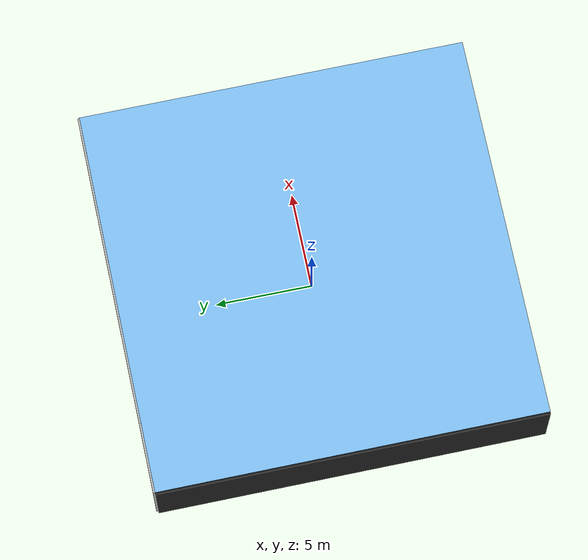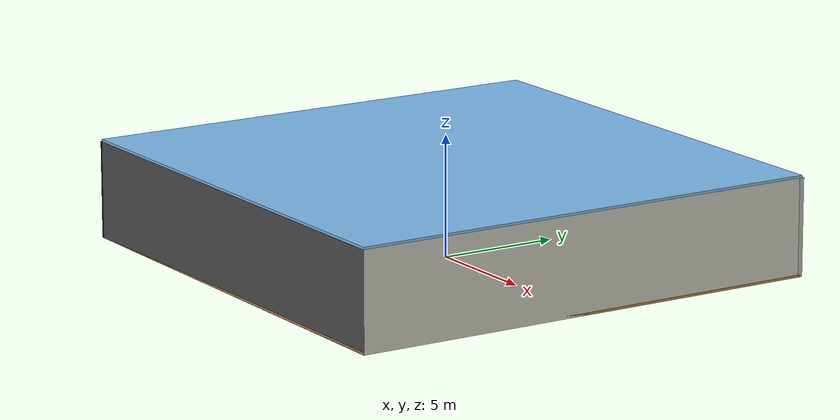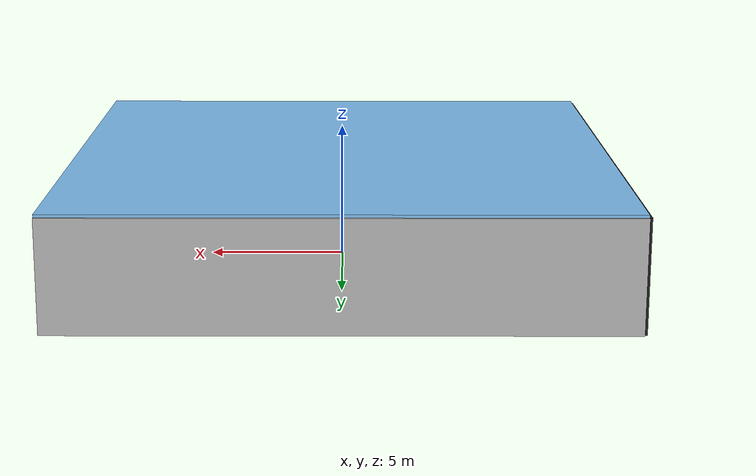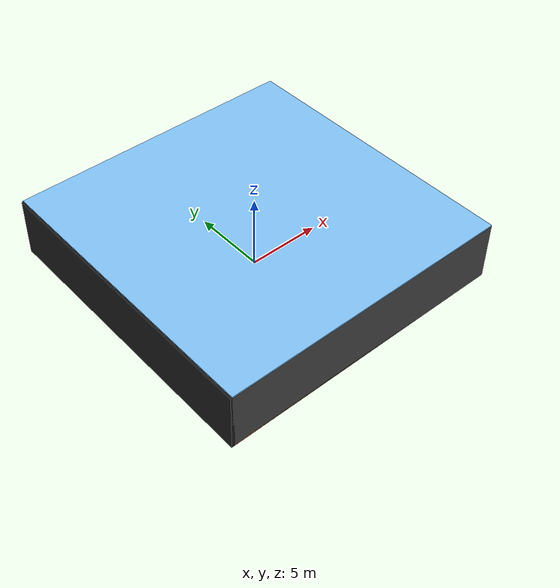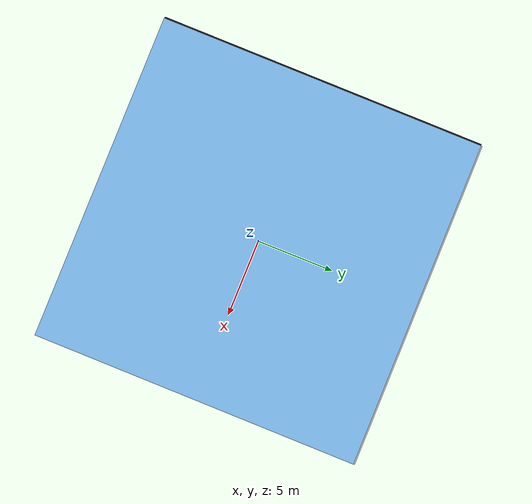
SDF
<sdf version="1.4">
 <world name="default">
  <physics type="ode">
   <max_step_size>0.001</max_step_size>
   <real_time_factor>1</real_time_factor>
   <real_time_update_rate>1000</real_time_update_rate>
   <gravity>0 0 -9.8</gravity>
  </physics>
  <scene><ambient>0.4 0.4 0.4 1</ambient><background>0.7 0.7 0.7 1</background><shadows>1</shadows></scene>
  <model name="Surrounding">
   <static>1</static>
   <link name="Ceiling">
    <collision name="Ceiling_Collision"><geometry><box><size>20 20 0.1</size></box></geometry></collision>
    <visual name="Ceiling_Visual">
     <geometry><box><size>20 20 0.1</size></box></geometry>
     <material>
      <script><uri>file://media/materials/scripts/gazebo.material</uri><name>Gazebo/SkyBlue</name></script>
     </material>
    </visual>
    <pose>0 0 4.05 0 0 0</pose>
   </link>
   <link name="Wall_South">
    <collision name="Wall_South_Collision">
     <geometry><box><size>20 0 4</size></box></geometry>
     <pose>0 0 2 0 -0 0</pose>
    </collision>
    <visual name="Wall_South_Visual">
     <pose>0 0 2 0 -0 0</pose>
     <geometry><box><size>20 0 4</size></box></geometry>
     <material>
      <script><uri>file://media/materials/scripts/gazebo.material</uri><name>Gazebo/Road</name></script>
     </material>
    </visual>
    <velocity_decay><linear>0</linear><angular>0</angular></velocity_decay>
    <pose>0 -10 0 0 -0 0</pose>
   </link>
   <link name="Wall_East">
    <collision name="Wall_21_Collision">
     <geometry><box><size>20 0 4</size></box></geometry>
     <pose>0 0 2 0 -0 0</pose>
    </collision>
    <visual name="Wall_21_Visual">
     <pose>0 0 2 0 -0 0</pose>
     <geometry><box><size>20 0 4</size></box></geometry>
     <material>
      <script><uri>file://media/materials/scripts/gazebo.material</uri><name>Gazebo/PaintedWall</name></script>
     </material>
    </visual>
    <velocity_decay><linear>0</linear><angular>0</angular></velocity_decay>
    <pose>10 0 0 0 -0 1.5708</pose>
   </link>
   <link name="Wall_North">
    <collision name="Wall_22_Collision">
     <geometry><box><size>20 0.2 4</size></box></geometry>
     <pose>0 0 2 0 -0 0</pose>
    </collision>
    <visual name="Wall_22_Visual">
     <pose>0 0 2 0 -0 0</pose>
     <geometry><box><size>20 0.2 4</size></box></geometry>
     <material>
      <script><uri>file://media/materials/scripts/gazebo.material</uri><name>Gazebo/Pioneer2Body</name></script>
     </material>
    </visual>
    <velocity_decay><linear>0</linear><angular>0</angular></velocity_decay>
    <pose>0 10 0 0 -0 0</pose>
   </link>
   <link name="Wall_West">
    <collision name="Wall_23_Collision">
     <geometry><box><size>20 0.2 4</size></box></geometry>
     <pose>0 0 2 0 -0 0</pose>
    </collision>
    <visual name="Wall_23_Visual">
     <pose>0 0 2 0 -0 0</pose>
     <geometry><box><size>20 0.2 4</size></box></geometry>
     <material>
      <script><uri>file://media/materials/scripts/gazebo.material</uri><name>Gazebo/FlatBlack</name></script>
     </material>
    </visual>
    <velocity_decay><linear>0</linear><angular>0</angular></velocity_decay>
    <pose>-10 0 0 0 0 -1.5708</pose>
   </link>
   <link name="Ground_link">
    <collision name="collision">
     <pose>0 0 .05 0 -0 0</pose>
     <geometry><box><size>20 20 0.1</size></box></geometry>
    </collision>
    <visual name="visual">
     <pose>0 0 .05 0 -0 0</pose>
     <geometry><box><size>20 20 0.1</size></box></geometry>
     <material>
      <script><uri>file://media/materials/scripts/gazebo.material</uri><name>Gazebo/Wood</name></script>
     </material>
    </visual>
   </link>
   <static>1</static>
  </model>
  <spherical_coordinates>
   <surface_model>EARTH_WGS84</surface_model>
   <latitude_deg>0</latitude_deg>
   <longitude_deg>0</longitude_deg>
   <elevation>0</elevation>
   <heading_deg>0</heading_deg>
  </spherical_coordinates>
  <light name="lightball_0" type="diffuse">
   <diffuse>0.8 0.8 0.8 1</diffuse>
   <specular>0.2 0.2 0.2 1</specular>
   <attenuation>
    <range>100</range>
    <constant>0.7</constant>
    <linear>0.01</linear>
    <quadratic>0.001</quadratic>
   </attenuation>
   <direction>-0.5 0.1 -0.9</direction>
   <pose>-9.76398112351 -6.04647371422 3.67810164923 0 0 0</pose>
  </light>
  <light name="lightball_1" type="diffuse">
   <diffuse>0.8 0.8 0.8 1</diffuse>
   <specular>0.2 0.2 0.2 1</specular>
   <attenuation>
    <range>100</range>
    <constant>0.7</constant>
    <linear>0.01</linear>
    <quadratic>0.001</quadratic>
   </attenuation>
   <direction>-0.5 0.1 -0.9</direction>
   <pose>-5.05175801736 -1.24550200385 3.47951346755 0 0 0</pose>
  </light>
  <light name="lightball_2" type="diffuse">
   <diffuse>0.8 0.8 0.8 1</diffuse>
   <specular>0.2 0.2 0.2 1</specular>
   <attenuation>
    <range>100</range>
    <constant>0.7</constant>
    <linear>0.01</linear>
    <quadratic>0.001</quadratic>
   </attenuation>
   <direction>-0.5 0.1 -0.9</direction>
   <pose>5.73531419679 -8.76900117955 2.29447139545 0 0 0</pose>
  </light>
  <light name="lightball_3" type="diffuse">
   <diffuse>0.8 0.8 0.8 1</diffuse>
   <specular>0.2 0.2 0.2 1</specular>
   <attenuation>
    <range>100</range>
    <constant>0.7</constant>
    <linear>0.01</linear>
    <quadratic>0.001</quadratic>
   </attenuation>
   <direction>-0.5 0.1 -0.9</direction>
   <pose>-4.28204053803 -6.23295222137 2.47779008569 0 0 0</pose>
  </light>
  <light name="lightball_4" type="diffuse">
   <diffuse>0.8 0.8 0.8 1</diffuse>
   <specular>0.2 0.2 0.2 1</specular>
   <attenuation>
    <range>100</range>
    <constant>0.7</constant>
    <linear>0.01</linear>
    <quadratic>0.001</quadratic>
   </attenuation>
   <direction>-0.5 0.1 -0.9</direction>
   <pose>-4.25065696558 2.22232364696 3.00801025725 0 0 0</pose>
  </light>
  <light name="lightball_5" type="diffuse">
   <diffuse>0.8 0.8 0.8 1</diffuse>
   <specular>0.2 0.2 0.2 1</specular>
   <attenuation>
    <range>100</range>
    <constant>0.7</constant>
    <linear>0.01</linear>
    <quadratic>0.001</quadratic>
   </attenuation>
   <direction>-0.5 0.1 -0.9</direction>
   <pose>0.630023699014 2.74984637613 2.66564825173 0 0 0</pose>
  </light>
  <light name="lightball_6" type="diffuse">
   <diffuse>0.8 0.8 0.8 1</diffuse>
   <specular>0.2 0.2 0.2 1</specular>
   <attenuation>
    <range>100</range>
    <constant>0.7</constant>
    <linear>0.01</linear>
    <quadratic>0.001</quadratic>
   </attenuation>
   <direction>-0.5 0.1 -0.9</direction>
   <pose>-1.6404211082 -2.84924774309 2.313679366 0 0 0</pose>
  </light>
  <light name="lightball_7" type="diffuse">
   <diffuse>0.8 0.8 0.8 1</diffuse>
   <specular>0.2 0.2 0.2 1</specular>
   <attenuation>
    <range>100</range>
    <constant>0.7</constant>
    <linear>0.01</linear>
    <quadratic>0.001</quadratic>
   </attenuation>
   <direction>-0.5 0.1 -0.9</direction>
   <pose>-8.4333485111 8.01990426512 1.58171913494 0 0 0</pose>
  </light>
  <include><uri>model://table</uri><pose>-6.87162543609 1.40165439693 0 0 0 2.62592172387</pose></include>
  <include>
   <uri>model://construction_cone</uri>
   <pose>-7.34464883622 4.7784210524 0 0 0 0.537721545714</pose>
  </include>
  <include><uri>model://cabinet</uri><pose>-1.94227803193 4.40413126367 0 0 0 2.19140183057</pose></include>
  <include><uri>model://cabinet</uri><pose>8.06213531884 -7.12932354749 0 0 0 2.70670060303</pose></include>
  <include><uri>model://table</uri><pose>7.87630669897 7.92253021404 0 0 0 0.0934353902689</pose></include>
 </world>
</sdf>

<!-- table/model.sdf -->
<sdf version="1.5">
  <model name="table">
    <static>true</static>
    <link name="link">
      <collision name="surface">
        <pose>0 0 1.0 0 0 0</pose>
        <geometry>
          <box>
            <size>1.5 0.8 0.03</size>
          </box>
        </geometry>
        <surface>
          <friction>
            <ode>
              <mu>0.6</mu>
              <mu2>0.6</mu2>
            </ode>
          </friction>
        </surface>
      </collision>
      <visual name="visual1">
        <pose>0 0 1.0 0 0 0</pose>
        <geometry>
          <box>
            <size>1.5 0.8 0.03</size>
          </box>
        </geometry>
        <material>
          <script>
            <uri>model://media/materials/scripts/gazebo.material</uri>
            <name>Gazebo/Wood</name>
          </script>
        </material>
      </visual>
      <collision name="front_left_leg">
        <pose>0.68 0.38 0.5 0 0 0</pose>
        <geometry>
          <cylinder>
            <radius>0.02</radius>
            <length>1.0</length>
          </cylinder>
        </geometry>
      </collision>
      <visual name="front_left_leg">
        <pose>0.68 0.38 0.5 0 0 0</pose>
        <geometry>
          <cylinder>
            <radius>0.02</radius>
            <length>1.0</length>
          </cylinder>
        </geometry>
        <material>
          <script>
            <uri>model://media/materials/scripts/gazebo.material</uri>
            <name>Gazebo/Grey</name>
          </script>
        </material>
      </visual>
      <collision name="front_right_leg">
        <pose>0.68 -0.38 0.5 0 0 0</pose>
        <geometry>
          <cylinder>
            <radius>0.02</radius>
            <length>1.0</length>
          </cylinder>
        </geometry>
      </collision>
      <visual name="front_right_leg">
        <pose>0.68 -0.38 0.5 0 0 0</pose>
        <geometry>
          <cylinder>
            <radius>0.02</radius>
            <length>1.0</length>
          </cylinder>
        </geometry>
        <material>
          <script>
            <uri>model://media/materials/scripts/gazebo.material</uri>
            <name>Gazebo/Grey</name>
          </script>
        </material>
      </visual>
      <collision name="back_right_leg">
        <pose>-0.68 -0.38 0.5 0 0 0</pose>
        <geometry>
          <cylinder>
            <radius>0.02</radius>
            <length>1.0</length>
          </cylinder>
        </geometry>
      </collision>
      <visual name="back_right_leg">
        <pose>-0.68 -0.38 0.5 0 0 0</pose>
        <geometry>
          <cylinder>
            <radius>0.02</radius>
            <length>1.0</length>
          </cylinder>
        </geometry>
        <material>
          <script>
            <uri>model://media/materials/scripts/gazebo.material</uri>
            <name>Gazebo/Grey</name>
          </script>
        </material>
      </visual>
      <collision name="back_left_leg">
        <pose>-0.68 0.38 0.5 0 0 0</pose>
        <geometry>
          <cylinder>
            <radius>0.02</radius>
            <length>1.0</length>
          </cylinder>
        </geometry>
      </collision>
      <visual name="back_left_leg">
        <pose>-0.68 0.38 0.5 0 0 0</pose>
        <geometry>
          <cylinder>
            <radius>0.02</radius>
            <length>1.0</length>
          </cylinder>
        </geometry>
        <material>
          <script>
            <uri>model://media/materials/scripts/gazebo.material</uri>
            <name>Gazebo/Grey</name>
          </script>
        </material>
      </visual>
    </link>
  </model>
</sdf>

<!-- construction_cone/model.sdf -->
<sdf version="1.5">
  <model name="Construction Cone">
    <link name="link">
      <collision name="collision">
        <geometry>
          <mesh>
            <scale>10 10 10</scale>
            <uri>file://isr-testbed/construction_cone/meshes/construction_cone.dae</uri>
          </mesh>
        </geometry>
      </collision>
      <visual name="visual">
        <geometry>
          <mesh>
            <scale>10 10 10</scale>
            <uri>file://isr-testbed/construction_cone/meshes/construction_cone.dae</uri>
          </mesh>
        </geometry>
      </visual>
    </link>
  </model>
</sdf>

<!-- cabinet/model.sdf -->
<sdf version="1.5">
  <model name="cabinet">
    <static>true</static>
    <link name="cabinet_bottom_plate">
      <inertial>
        <pose>0 0 -1 0 0 0</pose>
        <inertia>
          <ixx>2.050000</ixx>
          <ixy>0</ixy>
          <ixz>0</ixz>
          <iyy>2.050000</iyy>
          <iyz>0</iyz>
          <izz>2.050000</izz>
        </inertia>
        <mass>25.000000</mass>
      </inertial>
      <collision name="cabinet_bottom_plate_geom">
        <pose>0 0 0.010000 0 0 0</pose>
        <geometry>
          <box>
            <size>0.450000 0.450000 0.020000</size>
          </box>
        </geometry>
      </collision>
      <visual name="cabinet_bottom_plate_geom_visual">
        <pose>0 0 0.010000 0 0 0</pose>
        <geometry>
          <box>
            <size>0.450000 0.450000 0.020000</size>
          </box>
        </geometry>
        <material>
          <script>
            <uri>model://media/materials/scripts/gazebo.material</uri>
            <name>Gazebo/Wood</name>
          </script>
        </material>
      </visual>
      <collision name="cabinet_bottom_plate_geom_cabinet_back_plate">
        <pose>0.235000 0 0.510000 0 0 0</pose>
        <geometry>
          <box>
            <size>0.020000 0.450000 1.020000</size>
          </box>
        </geometry>
      </collision>
      <visual name="cabinet_bottom_plate_geom_cabinet_back_plate_visual">
        <pose>0.235000 0 0.510000 0 0 0</pose>
        <geometry>
          <box>
            <size>0.020000 0.450000 1.020000</size>
          </box>
        </geometry>
        <material>
          <script>
            <uri>model://media/materials/scripts/gazebo.material</uri>
            <name>Gazebo/Wood</name>
          </script>
        </material>
      </visual>
      <collision name="cabinet_bottom_plate_geom_cabinet_left_plate">
        <pose>0 0.235000 0.510000 0 0 0</pose>
        <geometry>
          <box>
            <size>0.450000 0.020000 1.020000</size>
          </box>
        </geometry>
      </collision>
      <visual name="cabinet_bottom_plate_geom_cabinet_left_plate_visual">
        <pose>0 0.235000 0.510000 0 0 0</pose>
        <geometry>
          <box>
            <size>0.450000 0.020000 1.020000</size>
          </box>
        </geometry>
        <material>
          <script>
            <uri>model://media/materials/scripts/gazebo.material</uri>
            <name>Gazebo/Wood</name>
          </script>
        </material>
      </visual>
      <collision name="cabinet_bottom_plate_geom_cabinet_middle_plate">
        <pose>0 0 0.510000 0 0 0</pose>
        <geometry>
          <box>
            <size>0.450000 0.450000 0.020000</size>
          </box>
        </geometry>
      </collision>
      <visual name="cabinet_bottom_plate_geom_cabinet_middle_plate_visual">
        <pose>0 0 0.510000 0 0 0</pose>
        <geometry>
          <box>
            <size>0.450000 0.450000 0.020000</size>
          </box>
        </geometry>
        <material>
          <script>
            <uri>model://media/materials/scripts/gazebo.material</uri>
            <name>Gazebo/Wood</name>
          </script>
        </material>
      </visual>
      <collision name="cabinet_bottom_plate_geom_cabinet_right_plate">
        <pose>0 -0.235000 0.510000 0 0 0</pose>
        <geometry>
          <box>
            <size>0.450000 0.020000 1.020000</size>
          </box>
        </geometry>
      </collision>
      <visual name="cabinet_bottom_plate_geom_cabinet_right_plate_visual">
        <pose>0 -0.235000 0.510000 0 0 0</pose>
        <geometry>
          <box>
            <size>0.450000 0.020000 1.020000</size>
          </box>
        </geometry>
        <material>
          <script>
            <uri>model://media/materials/scripts/gazebo.material</uri>
            <name>Gazebo/Wood</name>
          </script>
        </material>
      </visual>
      <collision name="cabinet_bottom_plate_geom_cabinet_top_plate">
        <pose>0 0 1.010000 0 0 0</pose>
        <geometry>
          <box>
            <size>0.450000 0.450000 0.020000</size>
          </box>
        </geometry>
      </collision>
      <visual name="cabinet_bottom_plate_geom_cabinet_top_plate_visual">
        <pose>0 0 1.010000 0 0 0</pose>
        <geometry>
          <box>
            <size>0.450000 0.450000 0.020000</size>
          </box>
        </geometry>
        <material>
          <script>
            <uri>model://media/materials/scripts/gazebo.material</uri>
            <name>Gazebo/Wood</name>
          </script>
        </material>
      </visual>
    </link>
  </model>
</sdf>
